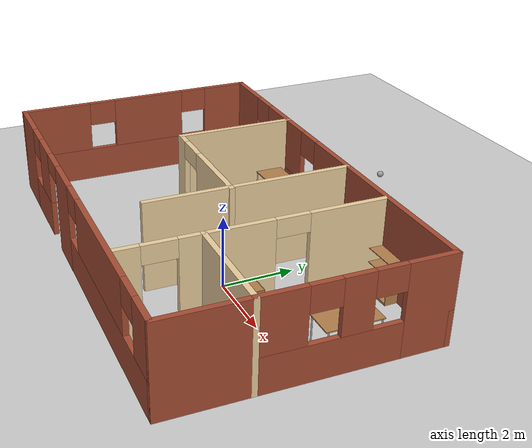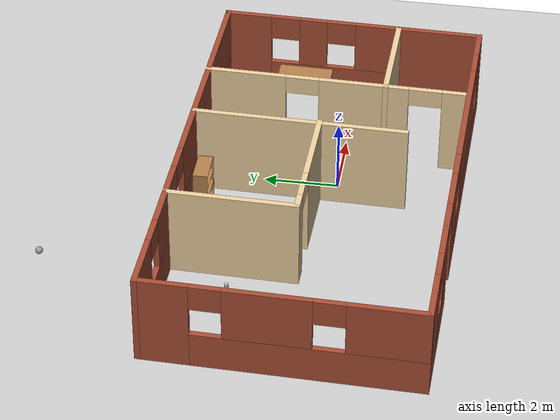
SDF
<sdf version="1.6">
 <world name="default">
  <plugin name="hello" filename="libhello.so"/>
  <light name="sun" type="directional">
   <pose>0 0 10 0 -0 0</pose>
   <diffuse>0.8 0.8 0.8 1</diffuse>
   <specular>0.2 0.2 0.2 1</specular>
   <attenuation>
    <range>1000</range>
    <constant>0.9</constant>
    <linear>0.01</linear>
    <quadratic>0.001</quadratic>
   </attenuation>
   <direction>-0.5 0.1 -0.9</direction>
   <spot><inner_angle>0</inner_angle><outer_angle>0</outer_angle><falloff>0</falloff></spot>
  </light>
  <model name="ground_plane">
   <static>1</static>
   <link name="link">
    <collision name="collision">
     <geometry><plane><normal>0 0 1</normal><size>100 100</size></plane></geometry>
     <surface>
      <contact><collide_bitmask>65535</collide_bitmask></contact>
      <friction><ode><mu>100</mu><mu2>50</mu2></ode></friction>
     </surface>
    </collision>
    <visual name="visual">
     <cast_shadows>0</cast_shadows>
     <geometry><plane><normal>0 0 1</normal><size>100 100</size></plane></geometry>
     <material>
      <script><uri>file://media/materials/scripts/gazebo.material</uri><name>Gazebo/Grey</name></script>
     </material>
    </visual>
   </link>
  </model>
  <gravity>0 0 -9.8</gravity>
  <magnetic_field>6e-06 2.3e-05 -4.2e-05</magnetic_field>
  <atmosphere type="adiabatic"/>
  <physics name="default_physics" default="0" type="ode">
   <max_step_size>0.001</max_step_size>
   <real_time_factor>1</real_time_factor>
   <real_time_update_rate>1000</real_time_update_rate>
  </physics>
  <scene><ambient>0.4 0.4 0.4 1</ambient><background>0.7 0.7 0.7 1</background><shadows>1</shadows></scene>
  <spherical_coordinates>
   <surface_model>EARTH_WGS84</surface_model>
   <latitude_deg>0</latitude_deg>
   <longitude_deg>0</longitude_deg>
   <elevation>0</elevation>
   <heading_deg>0</heading_deg>
  </spherical_coordinates>
  <model name="apartment">
   <pose>-1.69639 0.317076 0 0 0 -0.022734</pose>
   <link name="Wall_10">
    <pose>-5.925 -0.028256 0 0 -0 -1.5708</pose>
    <visual name="Wall_10_Visual_0">
     <pose>-2.93317 0 1.25 0 -0 0</pose>
     <geometry><box><size>1.38366 0.15 2.5</size></box></geometry>
     <material>
      <script><uri>file://media/materials/scripts/gazebo.material</uri><name>Gazebo/Bricks</name></script>
      <ambient>1 1 1 1</ambient>
     </material>
     <meta><layer>0</layer></meta>
    </visual>
    <collision name="Wall_10_Collision_0">
     <geometry><box><size>1.38366 0.15 2.5</size></box></geometry>
     <pose>-2.93317 0 1.25 0 -0 0</pose>
    </collision>
    <visual name="Wall_10_Visual_1">
     <pose>0.691828 0 0.5 0 -0 0</pose>
     <geometry><box><size>5.86634 0.15 1</size></box></geometry>
     <material>
      <script><uri>file://media/materials/scripts/gazebo.material</uri><name>Gazebo/Bricks</name></script>
      <ambient>1 1 1 1</ambient>
     </material>
     <meta><layer>0</layer></meta>
    </visual>
    <collision name="Wall_10_Collision_1">
     <geometry><box><size>5.86634 0.15 1</size></box></geometry>
     <pose>0.691828 0 0.5 0 -0 0</pose>
    </collision>
    <visual name="Wall_10_Visual_2">
     <pose>-0.338336 0 1.75 0 -0 0</pose>
     <geometry><box><size>2.20601 0.15 1.5</size></box></geometry>
     <material>
      <script><uri>file://media/materials/scripts/gazebo.material</uri><name>Gazebo/Bricks</name></script>
      <ambient>1 1 1 1</ambient>
     </material>
     <meta><layer>0</layer></meta>
    </visual>
    <collision name="Wall_10_Collision_2">
     <geometry><box><size>2.20601 0.15 1.5</size></box></geometry>
     <pose>-0.338336 0 1.75 0 -0 0</pose>
    </collision>
    <visual name="Wall_10_Visual_3">
     <pose>2.59484 0 1.75 0 -0 0</pose>
     <geometry><box><size>2.06033 0.15 1.5</size></box></geometry>
     <material>
      <script><uri>file://media/materials/scripts/gazebo.material</uri><name>Gazebo/Bricks</name></script>
      <ambient>1 1 1 1</ambient>
     </material>
     <meta><layer>0</layer></meta>
    </visual>
    <collision name="Wall_10_Collision_3">
     <geometry><box><size>2.06033 0.15 1.5</size></box></geometry>
     <pose>2.59484 0 1.75 0 -0 0</pose>
    </collision>
    <visual name="Wall_10_Visual_4">
     <pose>-1.84134 0 2.15 0 -0 0</pose>
     <geometry><box><size>0.8 0.15 0.7</size></box></geometry>
     <material>
      <script><uri>file://media/materials/scripts/gazebo.material</uri><name>Gazebo/Bricks</name></script>
      <ambient>1 1 1 1</ambient>
     </material>
     <meta><layer>0</layer></meta>
    </visual>
    <collision name="Wall_10_Collision_4">
     <geometry><box><size>0.8 0.15 0.7</size></box></geometry>
     <pose>-1.84134 0 2.15 0 -0 0</pose>
    </collision>
    <visual name="Wall_10_Visual_5">
     <pose>1.16467 0 2.15 0 -0 0</pose>
     <geometry><box><size>0.8 0.15 0.7</size></box></geometry>
     <material>
      <script><uri>file://media/materials/scripts/gazebo.material</uri><name>Gazebo/Bricks</name></script>
      <ambient>1 1 1 1</ambient>
     </material>
     <meta><layer>0</layer></meta>
    </visual>
    <collision name="Wall_10_Collision_5">
     <geometry><box><size>0.8 0.15 0.7</size></box></geometry>
     <pose>1.16467 0 2.15 0 -0 0</pose>
    </collision>
   </link>
   <link name="Wall_11">
    <pose>-0 -3.57826 0 0 -0 0</pose>
    <visual name="Wall_11_Visual_0">
     <pose>-5.2325 0 1.25 0 -0 0</pose>
     <geometry><box><size>1.535 0.15 2.5</size></box></geometry>
     <material>
      <script><uri>file://media/materials/scripts/gazebo.material</uri><name>Gazebo/Bricks</name></script>
      <ambient>1 1 1 1</ambient>
     </material>
     <meta><layer>0</layer></meta>
    </visual>
    <collision name="Wall_11_Collision_0">
     <geometry><box><size>1.535 0.15 2.5</size></box></geometry>
     <pose>-5.2325 0 1.25 0 -0 0</pose>
    </collision>
    <visual name="Wall_11_Visual_1">
     <pose>-1.07324 0 1.25 0 -0 0</pose>
     <geometry><box><size>1.26192 0.15 2.5</size></box></geometry>
     <material>
      <script><uri>file://media/materials/scripts/gazebo.material</uri><name>Gazebo/Bricks</name></script>
      <ambient>1 1 1 1</ambient>
     </material>
     <meta><layer>0</layer></meta>
    </visual>
    <collision name="Wall_11_Collision_1">
     <geometry><box><size>1.26192 0.15 2.5</size></box></geometry>
     <pose>-1.07324 0 1.25 0 -0 0</pose>
    </collision>
    <visual name="Wall_11_Visual_2">
     <pose>-3.5346 0 0.5 0 -0 0</pose>
     <geometry><box><size>1.86079 0.15 1</size></box></geometry>
     <material>
      <script><uri>file://media/materials/scripts/gazebo.material</uri><name>Gazebo/Bricks</name></script>
      <ambient>1 1 1 1</ambient>
     </material>
     <meta><layer>0</layer></meta>
    </visual>
    <collision name="Wall_11_Collision_2">
     <geometry><box><size>1.86079 0.15 1</size></box></geometry>
     <pose>-3.5346 0 0.5 0 -0 0</pose>
    </collision>
    <visual name="Wall_11_Visual_3">
     <pose>2.77886 0 0.5 0 -0 0</pose>
     <geometry><box><size>6.44228 0.15 1</size></box></geometry>
     <material>
      <script><uri>file://media/materials/scripts/gazebo.material</uri><name>Gazebo/Bricks</name></script>
      <ambient>1 1 1 1</ambient>
     </material>
     <meta><layer>0</layer></meta>
    </visual>
    <collision name="Wall_11_Collision_3">
     <geometry><box><size>6.44228 0.15 1</size></box></geometry>
     <pose>2.77886 0 0.5 0 -0 0</pose>
    </collision>
    <visual name="Wall_11_Visual_4">
     <pose>-3.1346 0 1.75 0 -0 0</pose>
     <geometry><box><size>1.06079 0.15 1.5</size></box></geometry>
     <material>
      <script><uri>file://media/materials/scripts/gazebo.material</uri><name>Gazebo/Bricks</name></script>
      <ambient>1 1 1 1</ambient>
     </material>
     <meta><layer>0</layer></meta>
    </visual>
    <collision name="Wall_11_Collision_4">
     <geometry><box><size>1.06079 0.15 1.5</size></box></geometry>
     <pose>-3.1346 0 1.75 0 -0 0</pose>
    </collision>
    <visual name="Wall_11_Visual_5">
     <pose>-3.1346 0 1.75 0 -0 0</pose>
     <geometry><box><size>1.06079 0.15 1.5</size></box></geometry>
     <material>
      <script><uri>file://media/materials/scripts/gazebo.material</uri><name>Gazebo/Bricks</name></script>
      <ambient>1 1 1 1</ambient>
     </material>
     <meta><layer>0</layer></meta>
    </visual>
    <collision name="Wall_11_Collision_5">
     <geometry><box><size>1.06079 0.15 1.5</size></box></geometry>
     <pose>-3.1346 0 1.75 0 -0 0</pose>
    </collision>
    <visual name="Wall_11_Visual_6">
     <pose>2.28084 0 1.75 0 -0 0</pose>
     <geometry><box><size>3.84624 0.15 1.5</size></box></geometry>
     <material>
      <script><uri>file://media/materials/scripts/gazebo.material</uri><name>Gazebo/Bricks</name></script>
      <ambient>1 1 1 1</ambient>
     </material>
     <meta><layer>0</layer></meta>
    </visual>
    <collision name="Wall_11_Collision_6">
     <geometry><box><size>3.84624 0.15 1.5</size></box></geometry>
     <pose>2.28084 0 1.75 0 -0 0</pose>
    </collision>
    <visual name="Wall_11_Visual_7">
     <pose>5.50198 0 1.75 0 -0 0</pose>
     <geometry><box><size>0.996046 0.15 1.5</size></box></geometry>
     <material>
      <script><uri>file://media/materials/scripts/gazebo.material</uri><name>Gazebo/Bricks</name></script>
      <ambient>1 1 1 1</ambient>
     </material>
     <meta><layer>0</layer></meta>
    </visual>
    <collision name="Wall_11_Collision_7">
     <geometry><box><size>0.996046 0.15 1.5</size></box></geometry>
     <pose>5.50198 0 1.75 0 -0 0</pose>
    </collision>
    <visual name="Wall_11_Visual_8">
     <pose>-4.065 0 2.15 0 -0 0</pose>
     <geometry><box><size>0.8 0.15 0.7</size></box></geometry>
     <material>
      <script><uri>file://media/materials/scripts/gazebo.material</uri><name>Gazebo/Bricks</name></script>
      <ambient>1 1 1 1</ambient>
     </material>
     <meta><layer>0</layer></meta>
    </visual>
    <collision name="Wall_11_Collision_8">
     <geometry><box><size>0.8 0.15 0.7</size></box></geometry>
     <pose>-4.065 0 2.15 0 -0 0</pose>
    </collision>
    <visual name="Wall_11_Visual_9">
     <pose>-0.042282 0 2.15 0 -0 0</pose>
     <geometry><box><size>0.8 0.15 0.7</size></box></geometry>
     <material>
      <script><uri>file://media/materials/scripts/gazebo.material</uri><name>Gazebo/Bricks</name></script>
      <ambient>1 1 1 1</ambient>
     </material>
     <meta><layer>0</layer></meta>
    </visual>
    <collision name="Wall_11_Collision_9">
     <geometry><box><size>0.8 0.15 0.7</size></box></geometry>
     <pose>-0.042282 0 2.15 0 -0 0</pose>
    </collision>
    <visual name="Wall_11_Visual_10">
     <pose>4.60395 0 2.15 0 -0 0</pose>
     <geometry><box><size>0.8 0.15 0.7</size></box></geometry>
     <material>
      <script><uri>file://media/materials/scripts/gazebo.material</uri><name>Gazebo/Bricks</name></script>
      <ambient>1 1 1 1</ambient>
     </material>
     <meta><layer>0</layer></meta>
    </visual>
    <collision name="Wall_11_Collision_10">
     <geometry><box><size>0.8 0.15 0.7</size></box></geometry>
     <pose>4.60395 0 2.15 0 -0 0</pose>
    </collision>
    <visual name="Wall_11_Visual_11">
     <pose>-2.15421 0 2.25 0 -0 0</pose>
     <geometry><box><size>0.9 0.15 0.5</size></box></geometry>
     <material>
      <script><uri>file://media/materials/scripts/gazebo.material</uri><name>Gazebo/Bricks</name></script>
      <ambient>1 1 1 1</ambient>
     </material>
     <meta><layer>0</layer></meta>
    </visual>
    <collision name="Wall_11_Collision_11">
     <geometry><box><size>0.9 0.15 0.5</size></box></geometry>
     <pose>-2.15421 0 2.25 0 -0 0</pose>
    </collision>
    <visual name="Wall_11_Visual_12">
     <pose>-2.15421 0 2.25 0 -0 0</pose>
     <geometry><box><size>0.9 0.15 0.5</size></box></geometry>
     <material>
      <script><uri>file://media/materials/scripts/gazebo.material</uri><name>Gazebo/Bricks</name></script>
      <ambient>1 1 1 1</ambient>
     </material>
     <meta><layer>0</layer></meta>
    </visual>
    <collision name="Wall_11_Collision_12">
     <geometry><box><size>0.9 0.15 0.5</size></box></geometry>
     <pose>-2.15421 0 2.25 0 -0 0</pose>
    </collision>
   </link>
   <link name="Wall_12">
    <collision name="Wall_12_Collision">
     <geometry><box><size>2.4 0.15 2.5</size></box></geometry>
     <pose>0 0 1.25 0 -0 0</pose>
    </collision>
    <visual name="Wall_12_Visual">
     <pose>0 0 1.25 0 -0 0</pose>
     <geometry><box><size>2.4 0.15 2.5</size></box></geometry>
     <material>
      <script><uri>file://media/materials/scripts/gazebo.material</uri><name>Gazebo/Bricks</name></script>
      <ambient>1 1 1 1</ambient>
     </material>
     <meta><layer>0</layer></meta>
    </visual>
    <pose>5.925 -2.45326 0 0 -0 1.5708</pose>
   </link>
   <link name="Wall_14">
    <collision name="Wall_14_Collision">
     <geometry><box><size>5.75 0.15 2.5</size></box></geometry>
     <pose>0 0 1.25 0 -0 0</pose>
    </collision>
    <visual name="Wall_14_Visual">
     <pose>0 0 1.25 0 -0 0</pose>
     <geometry><box><size>5.75 0.15 2.5</size></box></geometry>
     <material>
      <script><uri>file://media/materials/scripts/gazebo.material</uri><name>Gazebo/Grey</name></script>
      <ambient>0.921569 0.807843 0.615686 1</ambient>
     </material>
     <meta><layer>0</layer></meta>
    </visual>
    <pose>1.10155 0.680987 0 0 -0 -1.5708</pose>
   </link>
   <link name="Wall_21">
    <collision name="Wall_21_Collision">
     <geometry><box><size>3.5 0.15 2.5</size></box></geometry>
     <pose>0 0 1.25 0 -0 0</pose>
    </collision>
    <visual name="Wall_21_Visual">
     <pose>0 0 1.25 0 -0 0</pose>
     <geometry><box><size>3.5 0.15 2.5</size></box></geometry>
     <material>
      <script><uri>file://media/materials/scripts/gazebo.material</uri><name>Gazebo/Grey</name></script>
      <ambient>0.921569 0.807843 0.615686 1</ambient>
     </material>
     <meta><layer>0</layer></meta>
    </visual>
    <pose>-2.44698 1.84407 0 0 -0 -1.5708</pose>
   </link>
   <link name="Wall_22">
    <pose>-0.646975 0.169069 0 0 -0 0</pose>
    <visual name="Wall_22_Visual_0">
     <pose>-1.61441 0 1.25 0 -0 0</pose>
     <geometry><box><size>0.521175 0.15 2.5</size></box></geometry>
     <material>
      <script><uri>file://media/materials/scripts/gazebo.material</uri><name>Gazebo/Grey</name></script>
      <ambient>0.921569 0.807843 0.615686 1</ambient>
     </material>
     <meta><layer>0</layer></meta>
    </visual>
    <collision name="Wall_22_Collision_0">
     <geometry><box><size>0.521175 0.15 2.5</size></box></geometry>
     <pose>-1.61441 0 1.25 0 -0 0</pose>
    </collision>
    <visual name="Wall_22_Visual_1">
     <pose>0.710588 0 1.25 0 -0 0</pose>
     <geometry><box><size>2.32883 0.15 2.5</size></box></geometry>
     <material>
      <script><uri>file://media/materials/scripts/gazebo.material</uri><name>Gazebo/Grey</name></script>
      <ambient>0.921569 0.807843 0.615686 1</ambient>
     </material>
     <meta><layer>0</layer></meta>
    </visual>
    <collision name="Wall_22_Collision_1">
     <geometry><box><size>2.32883 0.15 2.5</size></box></geometry>
     <pose>0.710588 0 1.25 0 -0 0</pose>
    </collision>
    <visual name="Wall_22_Visual_2">
     <pose>-0.903825 0 2.25 0 -0 0</pose>
     <geometry><box><size>0.9 0.15 0.5</size></box></geometry>
     <material>
      <script><uri>file://media/materials/scripts/gazebo.material</uri><name>Gazebo/Grey</name></script>
      <ambient>0.921569 0.807843 0.615686 1</ambient>
     </material>
     <meta><layer>0</layer></meta>
    </visual>
    <collision name="Wall_22_Collision_2">
     <geometry><box><size>0.9 0.15 0.5</size></box></geometry>
     <pose>-0.903825 0 2.25 0 -0 0</pose>
    </collision>
   </link>
   <link name="Wall_24">
    <pose>3.075 -2.37826 0 0 -0 -1.5708</pose>
    <visual name="Wall_24_Visual_0">
     <pose>-0.771247 0 1.25 0 -0 0</pose>
     <geometry><box><size>0.707506 0.15 2.5</size></box></geometry>
     <material>
      <script><uri>file://media/materials/scripts/gazebo.material</uri><name>Gazebo/Grey</name></script>
      <ambient>0.921569 0.807843 0.615686 1</ambient>
     </material>
     <meta><layer>0</layer></meta>
    </visual>
    <collision name="Wall_24_Collision_0">
     <geometry><box><size>0.707506 0.15 2.5</size></box></geometry>
     <pose>-0.771247 0 1.25 0 -0 0</pose>
    </collision>
    <visual name="Wall_24_Visual_1">
     <pose>0.803753 0 1.25 0 -0 0</pose>
     <geometry><box><size>0.642494 0.15 2.5</size></box></geometry>
     <material>
      <script><uri>file://media/materials/scripts/gazebo.material</uri><name>Gazebo/Grey</name></script>
      <ambient>0.921569 0.807843 0.615686 1</ambient>
     </material>
     <meta><layer>0</layer></meta>
    </visual>
    <collision name="Wall_24_Collision_1">
     <geometry><box><size>0.642494 0.15 2.5</size></box></geometry>
     <pose>0.803753 0 1.25 0 -0 0</pose>
    </collision>
    <visual name="Wall_24_Visual_2">
     <pose>0.032506 0 2.25 0 -0 0</pose>
     <geometry><box><size>0.9 0.15 0.5</size></box></geometry>
     <material>
      <script><uri>file://media/materials/scripts/gazebo.material</uri><name>Gazebo/Grey</name></script>
      <ambient>0.921569 0.807843 0.615686 1</ambient>
     </material>
     <meta><layer>0</layer></meta>
    </visual>
    <collision name="Wall_24_Collision_2">
     <geometry><box><size>0.9 0.15 0.5</size></box></geometry>
     <pose>0.032506 0 2.25 0 -0 0</pose>
    </collision>
   </link>
   <link name="Wall_5">
    <pose>-0 3.52174 0 0 -0 0</pose>
    <visual name="Wall_5_Visual_0">
     <pose>-5.21398 0 1.25 0 -0 0</pose>
     <geometry><box><size>1.57204 0.15 2.5</size></box></geometry>
     <material>
      <script><uri>file://media/materials/scripts/gazebo.material</uri><name>Gazebo/Bricks</name></script>
      <ambient>1 1 1 1</ambient>
     </material>
     <meta><layer>0</layer></meta>
    </visual>
    <collision name="Wall_5_Collision_0">
     <geometry><box><size>1.57204 0.15 2.5</size></box></geometry>
     <pose>-5.21398 0 1.25 0 -0 0</pose>
    </collision>
    <visual name="Wall_5_Visual_1">
     <pose>0.78602 0 0.5 0 -0 0</pose>
     <geometry><box><size>10.428 0.15 1</size></box></geometry>
     <material>
      <script><uri>file://media/materials/scripts/gazebo.material</uri><name>Gazebo/Bricks</name></script>
      <ambient>1 1 1 1</ambient>
     </material>
     <meta><layer>0</layer></meta>
    </visual>
    <collision name="Wall_5_Collision_1">
     <geometry><box><size>10.428 0.15 1</size></box></geometry>
     <pose>0.78602 0 0.5 0 -0 0</pose>
    </collision>
    <visual name="Wall_5_Visual_2">
     <pose>-2.5279 0 1.75 0 -0 0</pose>
     <geometry><box><size>2.20011 0.15 1.5</size></box></geometry>
     <material>
      <script><uri>file://media/materials/scripts/gazebo.material</uri><name>Gazebo/Bricks</name></script>
      <ambient>1 1 1 1</ambient>
     </material>
     <meta><layer>0</layer></meta>
    </visual>
    <collision name="Wall_5_Collision_2">
     <geometry><box><size>2.20011 0.15 1.5</size></box></geometry>
     <pose>-2.5279 0 1.75 0 -0 0</pose>
    </collision>
    <visual name="Wall_5_Visual_3">
     <pose>2.68608 0 1.75 0 -0 0</pose>
     <geometry><box><size>6.62785 0.15 1.5</size></box></geometry>
     <material>
      <script><uri>file://media/materials/scripts/gazebo.material</uri><name>Gazebo/Bricks</name></script>
      <ambient>1 1 1 1</ambient>
     </material>
     <meta><layer>0</layer></meta>
    </visual>
    <collision name="Wall_5_Collision_3">
     <geometry><box><size>6.62785 0.15 1.5</size></box></geometry>
     <pose>2.68608 0 1.75 0 -0 0</pose>
    </collision>
    <visual name="Wall_5_Visual_4">
     <pose>-4.02796 0 2.15 0 -0 0</pose>
     <geometry><box><size>0.8 0.15 0.7</size></box></geometry>
     <material>
      <script><uri>file://media/materials/scripts/gazebo.material</uri><name>Gazebo/Bricks</name></script>
      <ambient>1 1 1 1</ambient>
     </material>
     <meta><layer>0</layer></meta>
    </visual>
    <collision name="Wall_5_Collision_4">
     <geometry><box><size>0.8 0.15 0.7</size></box></geometry>
     <pose>-4.02796 0 2.15 0 -0 0</pose>
    </collision>
    <visual name="Wall_5_Visual_5">
     <pose>-1.02785 0 2.15 0 -0 0</pose>
     <geometry><box><size>0.8 0.15 0.7</size></box></geometry>
     <material>
      <script><uri>file://media/materials/scripts/gazebo.material</uri><name>Gazebo/Bricks</name></script>
      <ambient>1 1 1 1</ambient>
     </material>
     <meta><layer>0</layer></meta>
    </visual>
    <collision name="Wall_5_Collision_5">
     <geometry><box><size>0.8 0.15 0.7</size></box></geometry>
     <pose>-1.02785 0 2.15 0 -0 0</pose>
    </collision>
   </link>
   <link name="Wall_6">
    <pose>5.925 1.09674 0 0 -0 -1.5708</pose>
    <visual name="Wall_6_Visual_0">
     <pose>-1.83834 0 1.25 0 -0 0</pose>
     <geometry><box><size>1.32332 0.15 2.5</size></box></geometry>
     <material>
      <script><uri>file://media/materials/scripts/gazebo.material</uri><name>Gazebo/Bricks</name></script>
      <ambient>1 1 1 1</ambient>
     </material>
     <meta><layer>0</layer></meta>
    </visual>
    <collision name="Wall_6_Collision_0">
     <geometry><box><size>1.32332 0.15 2.5</size></box></geometry>
     <pose>-1.83834 0 1.25 0 -0 0</pose>
    </collision>
    <visual name="Wall_6_Visual_1">
     <pose>0.661658 0 0.5 0 -0 0</pose>
     <geometry><box><size>3.67668 0.15 1</size></box></geometry>
     <material>
      <script><uri>file://media/materials/scripts/gazebo.material</uri><name>Gazebo/Bricks</name></script>
      <ambient>1 1 1 1</ambient>
     </material>
     <meta><layer>0</layer></meta>
    </visual>
    <collision name="Wall_6_Collision_1">
     <geometry><box><size>3.67668 0.15 1</size></box></geometry>
     <pose>0.661658 0 0.5 0 -0 0</pose>
    </collision>
    <visual name="Wall_6_Visual_2">
     <pose>0.017802 0 1.75 0 -0 0</pose>
     <geometry><box><size>0.788972 0.15 1.5</size></box></geometry>
     <material>
      <script><uri>file://media/materials/scripts/gazebo.material</uri><name>Gazebo/Bricks</name></script>
      <ambient>1 1 1 1</ambient>
     </material>
     <meta><layer>0</layer></meta>
    </visual>
    <collision name="Wall_6_Collision_2">
     <geometry><box><size>0.788972 0.15 1.5</size></box></geometry>
     <pose>0.017802 0 1.75 0 -0 0</pose>
    </collision>
    <visual name="Wall_6_Visual_3">
     <pose>1.85614 0 1.75 0 -0 0</pose>
     <geometry><box><size>1.28771 0.15 1.5</size></box></geometry>
     <material>
      <script><uri>file://media/materials/scripts/gazebo.material</uri><name>Gazebo/Bricks</name></script>
      <ambient>1 1 1 1</ambient>
     </material>
     <meta><layer>0</layer></meta>
    </visual>
    <collision name="Wall_6_Collision_3">
     <geometry><box><size>1.28771 0.15 1.5</size></box></geometry>
     <pose>1.85614 0 1.75 0 -0 0</pose>
    </collision>
    <visual name="Wall_6_Visual_4">
     <pose>-0.776684 0 2.15 0 -0 0</pose>
     <geometry><box><size>0.8 0.15 0.7</size></box></geometry>
     <material>
      <script><uri>file://media/materials/scripts/gazebo.material</uri><name>Gazebo/Bricks</name></script>
      <ambient>1 1 1 1</ambient>
     </material>
     <meta><layer>0</layer></meta>
    </visual>
    <collision name="Wall_6_Collision_4">
     <geometry><box><size>0.8 0.15 0.7</size></box></geometry>
     <pose>-0.776684 0 2.15 0 -0 0</pose>
    </collision>
    <visual name="Wall_6_Visual_5">
     <pose>0.812288 0 2.15 0 -0 0</pose>
     <geometry><box><size>0.8 0.15 0.7</size></box></geometry>
     <material>
      <script><uri>file://media/materials/scripts/gazebo.material</uri><name>Gazebo/Bricks</name></script>
      <ambient>1 1 1 1</ambient>
     </material>
     <meta><layer>0</layer></meta>
    </visual>
    <collision name="Wall_6_Collision_5">
     <geometry><box><size>0.8 0.15 0.7</size></box></geometry>
     <pose>0.812288 0 2.15 0 -0 0</pose>
    </collision>
   </link>
   <link name="Wall_7">
    <collision name="Wall_7_Collision">
     <geometry><box><size>3 0.15 2.5</size></box></geometry>
     <pose>0 0 1.25 0 -0 0</pose>
    </collision>
    <visual name="Wall_7_Visual">
     <pose>0 0 1.25 0 -0 0</pose>
     <geometry><box><size>3 0.15 2.5</size></box></geometry>
     <material>
      <script><uri>file://media/materials/scripts/gazebo.material</uri><name>Gazebo/Grey</name></script>
      <ambient>0.921569 0.807843 0.615686 1</ambient>
     </material>
     <meta><layer>0</layer></meta>
    </visual>
    <pose>4.5 -1.32826 0 0 -0 3.14159</pose>
   </link>
   <link name="Wall_8">
    <pose>3.075 1.09674 0 0 -0 1.5708</pose>
    <visual name="Wall_8_Visual_0">
     <pose>-1.55933 0 1.25 0 -0 0</pose>
     <geometry><box><size>1.88135 0.15 2.5</size></box></geometry>
     <material>
      <script><uri>file://media/materials/scripts/gazebo.material</uri><name>Gazebo/Grey</name></script>
      <ambient>0.921569 0.807843 0.615686 1</ambient>
     </material>
     <meta><layer>0</layer></meta>
    </visual>
    <collision name="Wall_8_Collision_0">
     <geometry><box><size>1.88135 0.15 2.5</size></box></geometry>
     <pose>-1.55933 0 1.25 0 -0 0</pose>
    </collision>
    <visual name="Wall_8_Visual_1">
     <pose>1.39067 0 1.25 0 -0 0</pose>
     <geometry><box><size>2.21865 0.15 2.5</size></box></geometry>
     <material>
      <script><uri>file://media/materials/scripts/gazebo.material</uri><name>Gazebo/Grey</name></script>
      <ambient>0.921569 0.807843 0.615686 1</ambient>
     </material>
     <meta><layer>0</layer></meta>
    </visual>
    <collision name="Wall_8_Collision_1">
     <geometry><box><size>2.21865 0.15 2.5</size></box></geometry>
     <pose>1.39067 0 1.25 0 -0 0</pose>
    </collision>
    <visual name="Wall_8_Visual_2">
     <pose>-0.168653 0 2.25 0 -0 0</pose>
     <geometry><box><size>0.9 0.15 0.5</size></box></geometry>
     <material>
      <script><uri>file://media/materials/scripts/gazebo.material</uri><name>Gazebo/Grey</name></script>
      <ambient>0.921569 0.807843 0.615686 1</ambient>
     </material>
     <meta><layer>0</layer></meta>
    </visual>
    <collision name="Wall_8_Collision_2">
     <geometry><box><size>0.9 0.15 0.5</size></box></geometry>
     <pose>-0.168653 0 2.25 0 -0 0</pose>
    </collision>
   </link>
   <static>1</static>
  </model>
  <model name="bookshelf">
   <static>1</static>
   <link name="link">
    <inertial><mass>1</mass></inertial>
    <collision name="back">
     <pose>0 0.005 0.6 0 -0 0</pose>
     <geometry><box><size>0.9 0.01 1.2</size></box></geometry>
    </collision>
    <visual name="visual1">
     <pose>0 0.005 0.6 0 -0 0</pose>
     <geometry><box><size>0.9 0.01 1.2</size></box></geometry>
     <material>
      <script><uri>file://media/materials/scripts/gazebo.material</uri><name>Gazebo/Wood</name></script>
     </material>
    </visual>
    <collision name="left_side">
     <pose>0.45 -0.195 0.6 0 -0 0</pose>
     <geometry><box><size>0.02 0.4 1.2</size></box></geometry>
    </collision>
    <visual name="visual2">
     <pose>0.45 -0.195 0.6 0 -0 0</pose>
     <geometry><box><size>0.02 0.4 1.2</size></box></geometry>
     <material>
      <script><uri>file://media/materials/scripts/gazebo.material</uri><name>Gazebo/Wood</name></script>
     </material>
    </visual>
    <collision name="right_side">
     <pose>-0.45 -0.195 0.6 0 -0 0</pose>
     <geometry><box><size>0.02 0.4 1.2</size></box></geometry>
    </collision>
    <visual name="visual3">
     <pose>-0.45 -0.195 0.6 0 -0 0</pose>
     <geometry><box><size>0.02 0.4 1.2</size></box></geometry>
     <material>
      <script><uri>file://media/materials/scripts/gazebo.material</uri><name>Gazebo/Wood</name></script>
     </material>
    </visual>
    <collision name="bottom">
     <pose>0 -0.195 0.03 0 -0 0</pose>
     <geometry><box><size>0.88 0.4 0.06</size></box></geometry>
    </collision>
    <visual name="visual4">
     <pose>0 -0.195 0.03 0 -0 0</pose>
     <geometry><box><size>0.88 0.4 0.06</size></box></geometry>
     <material>
      <script><uri>file://media/materials/scripts/gazebo.material</uri><name>Gazebo/Wood</name></script>
     </material>
    </visual>
    <collision name="top">
     <pose>0 -0.195 1.19 0 -0 0</pose>
     <geometry><box><size>0.88 0.4 0.02</size></box></geometry>
    </collision>
    <visual name="visual5">
     <pose>0 -0.195 1.19 0 -0 0</pose>
     <geometry><box><size>0.88 0.4 0.02</size></box></geometry>
     <material>
      <script><uri>file://media/materials/scripts/gazebo.material</uri><name>Gazebo/Wood</name></script>
     </material>
    </visual>
    <collision name="low_shelf">
     <pose>0 -0.195 0.43 0 -0 0</pose>
     <geometry><box><size>0.88 0.4 0.02</size></box></geometry>
    </collision>
    <visual name="visual6">
     <pose>0 -0.195 0.43 0 -0 0</pose>
     <geometry><box><size>0.88 0.4 0.02</size></box></geometry>
     <material>
      <script><uri>file://media/materials/scripts/gazebo.material</uri><name>Gazebo/Wood</name></script>
     </material>
    </visual>
    <collision name="high_shelf">
     <pose>0 -0.195 0.8 0 -0 0</pose>
     <geometry><box><size>0.88 0.4 0.02</size></box></geometry>
    </collision>
    <visual name="visual7">
     <pose>0 -0.195 0.8 0 -0 0</pose>
     <geometry><box><size>0.88 0.4 0.02</size></box></geometry>
     <material>
      <script><uri>file://media/materials/scripts/gazebo.material</uri><name>Gazebo/Wood</name></script>
     </material>
    </visual>
   </link>
   <pose>-1.23153 3.65908 0 0 -0 0</pose>
  </model>
  <model name="bookshelf_0">
   <static>1</static>
   <link name="link">
    <inertial><mass>1</mass></inertial>
    <collision name="back">
     <pose>0 0.005 0.6 0 -0 0</pose>
     <geometry><box><size>0.9 0.01 1.2</size></box></geometry>
    </collision>
    <visual name="visual1">
     <pose>0 0.005 0.6 0 -0 0</pose>
     <geometry><box><size>0.9 0.01 1.2</size></box></geometry>
     <material>
      <script><uri>file://media/materials/scripts/gazebo.material</uri><name>Gazebo/Wood</name></script>
     </material>
    </visual>
    <collision name="left_side">
     <pose>0.45 -0.195 0.6 0 -0 0</pose>
     <geometry><box><size>0.02 0.4 1.2</size></box></geometry>
    </collision>
    <visual name="visual2">
     <pose>0.45 -0.195 0.6 0 -0 0</pose>
     <geometry><box><size>0.02 0.4 1.2</size></box></geometry>
     <material>
      <script><uri>file://media/materials/scripts/gazebo.material</uri><name>Gazebo/Wood</name></script>
     </material>
    </visual>
    <collision name="right_side">
     <pose>-0.45 -0.195 0.6 0 -0 0</pose>
     <geometry><box><size>0.02 0.4 1.2</size></box></geometry>
    </collision>
    <visual name="visual3">
     <pose>-0.45 -0.195 0.6 0 -0 0</pose>
     <geometry><box><size>0.02 0.4 1.2</size></box></geometry>
     <material>
      <script><uri>file://media/materials/scripts/gazebo.material</uri><name>Gazebo/Wood</name></script>
     </material>
    </visual>
    <collision name="bottom">
     <pose>0 -0.195 0.03 0 -0 0</pose>
     <geometry><box><size>0.88 0.4 0.06</size></box></geometry>
    </collision>
    <visual name="visual4">
     <pose>0 -0.195 0.03 0 -0 0</pose>
     <geometry><box><size>0.88 0.4 0.06</size></box></geometry>
     <material>
      <script><uri>file://media/materials/scripts/gazebo.material</uri><name>Gazebo/Wood</name></script>
     </material>
    </visual>
    <collision name="top">
     <pose>0 -0.195 1.19 0 -0 0</pose>
     <geometry><box><size>0.88 0.4 0.02</size></box></geometry>
    </collision>
    <visual name="visual5">
     <pose>0 -0.195 1.19 0 -0 0</pose>
     <geometry><box><size>0.88 0.4 0.02</size></box></geometry>
     <material>
      <script><uri>file://media/materials/scripts/gazebo.material</uri><name>Gazebo/Wood</name></script>
     </material>
    </visual>
    <collision name="low_shelf">
     <pose>0 -0.195 0.43 0 -0 0</pose>
     <geometry><box><size>0.88 0.4 0.02</size></box></geometry>
    </collision>
    <visual name="visual6">
     <pose>0 -0.195 0.43 0 -0 0</pose>
     <geometry><box><size>0.88 0.4 0.02</size></box></geometry>
     <material>
      <script><uri>file://media/materials/scripts/gazebo.material</uri><name>Gazebo/Wood</name></script>
     </material>
    </visual>
    <collision name="high_shelf">
     <pose>0 -0.195 0.8 0 -0 0</pose>
     <geometry><box><size>0.88 0.4 0.02</size></box></geometry>
    </collision>
    <visual name="visual7">
     <pose>0 -0.195 0.8 0 -0 0</pose>
     <geometry><box><size>0.88 0.4 0.02</size></box></geometry>
     <material>
      <script><uri>file://media/materials/scripts/gazebo.material</uri><name>Gazebo/Wood</name></script>
     </material>
    </visual>
   </link>
   <pose>1.93792 3.70961 0 0 -0 0</pose>
  </model>
  <model name="beer">
   <link name="link">
    <pose>0 0 0.115 0 -0 0</pose>
    <inertial>
     <mass>0.39</mass>
     <inertia><ixx>0.00058</ixx><ixy>0</ixy><ixz>0</ixz><iyy>0.00058</iyy><iyz>0</iyz><izz>0.00019</izz></inertia>
    </inertial>
    <collision name="collision">
     <geometry><cylinder><radius>0.055</radius><length>0.23</length></cylinder></geometry>
    </collision>
    <visual name="visual">
     <geometry><cylinder><radius>0.055</radius><length>0.23</length></cylinder></geometry>
     <material>
      <script>
       <uri>model://beer/materials/scripts</uri>
       <uri>model://beer/materials/textures</uri>
       <name>Beer/Diffuse</name>
      </script>
     </material>
    </visual>
   </link>
   <pose>-5.65703 2.08617 0.775002 1.1e-05 3.9e-05 0.004052</pose>
  </model>
  <model name="table">
   <static>1</static>
   <link name="link">
    <collision name="surface">
     <pose>0 0 1 0 -0 0</pose>
     <geometry><box><size>1.5 0.8 0.03</size></box></geometry>
     <surface><friction><ode><mu>0.6</mu><mu2>0.6</mu2></ode></friction></surface>
    </collision>
    <visual name="visual1">
     <pose>0 0 1 0 -0 0</pose>
     <geometry><box><size>1.5 0.8 0.03</size></box></geometry>
     <material>
      <script><uri>file://media/materials/scripts/gazebo.material</uri><name>Gazebo/Wood</name></script>
     </material>
    </visual>
    <collision name="front_left_leg">
     <pose>0.68 0.38 0.5 0 -0 0</pose>
     <geometry><cylinder><radius>0.02</radius><length>1</length></cylinder></geometry>
    </collision>
    <visual name="front_left_leg">
     <pose>0.68 0.38 0.5 0 -0 0</pose>
     <geometry><cylinder><radius>0.02</radius><length>1</length></cylinder></geometry>
     <material>
      <script><uri>file://media/materials/scripts/gazebo.material</uri><name>Gazebo/Grey</name></script>
     </material>
    </visual>
    <collision name="front_right_leg">
     <pose>0.68 -0.38 0.5 0 -0 0</pose>
     <geometry><cylinder><radius>0.02</radius><length>1</length></cylinder></geometry>
    </collision>
    <visual name="front_right_leg">
     <pose>0.68 -0.38 0.5 0 -0 0</pose>
     <geometry><cylinder><radius>0.02</radius><length>1</length></cylinder></geometry>
     <material>
      <script><uri>file://media/materials/scripts/gazebo.material</uri><name>Gazebo/Grey</name></script>
     </material>
    </visual>
    <collision name="back_right_leg">
     <pose>-0.68 -0.38 0.5 0 -0 0</pose>
     <geometry><cylinder><radius>0.02</radius><length>1</length></cylinder></geometry>
    </collision>
    <visual name="back_right_leg">
     <pose>-0.68 -0.38 0.5 0 -0 0</pose>
     <geometry><cylinder><radius>0.02</radius><length>1</length></cylinder></geometry>
     <material>
      <script><uri>file://media/materials/scripts/gazebo.material</uri><name>Gazebo/Grey</name></script>
     </material>
    </visual>
    <collision name="back_left_leg">
     <pose>-0.68 0.38 0.5 0 -0 0</pose>
     <geometry><cylinder><radius>0.02</radius><length>1</length></cylinder></geometry>
    </collision>
    <visual name="back_left_leg">
     <pose>-0.68 0.38 0.5 0 -0 0</pose>
     <geometry><cylinder><radius>0.02</radius><length>1</length></cylinder></geometry>
     <material>
      <script><uri>file://media/materials/scripts/gazebo.material</uri><name>Gazebo/Grey</name></script>
     </material>
    </visual>
   </link>
   <pose>3.65777 1.42031 0.001054 -0.004408 -9.2e-05 -1.59161</pose>
  </model>
  <model name="table_0">
   <static>1</static>
   <link name="link">
    <collision name="surface">
     <pose>0 0 1 0 -0 0</pose>
     <geometry><box><size>1.5 0.8 0.03</size></box></geometry>
     <surface><friction><ode><mu>0.6</mu><mu2>0.6</mu2></ode></friction></surface>
    </collision>
    <visual name="visual1">
     <pose>0 0 1 0 -0 0</pose>
     <geometry><box><size>1.5 0.8 0.03</size></box></geometry>
     <material>
      <script><uri>file://media/materials/scripts/gazebo.material</uri><name>Gazebo/Wood</name></script>
     </material>
    </visual>
    <collision name="front_left_leg">
     <pose>0.68 0.38 0.5 0 -0 0</pose>
     <geometry><cylinder><radius>0.02</radius><length>1</length></cylinder></geometry>
    </collision>
    <visual name="front_left_leg">
     <pose>0.68 0.38 0.5 0 -0 0</pose>
     <geometry><cylinder><radius>0.02</radius><length>1</length></cylinder></geometry>
     <material>
      <script><uri>file://media/materials/scripts/gazebo.material</uri><name>Gazebo/Grey</name></script>
     </material>
    </visual>
    <collision name="front_right_leg">
     <pose>0.68 -0.38 0.5 0 -0 0</pose>
     <geometry><cylinder><radius>0.02</radius><length>1</length></cylinder></geometry>
    </collision>
    <visual name="front_right_leg">
     <pose>0.68 -0.38 0.5 0 -0 0</pose>
     <geometry><cylinder><radius>0.02</radius><length>1</length></cylinder></geometry>
     <material>
      <script><uri>file://media/materials/scripts/gazebo.material</uri><name>Gazebo/Grey</name></script>
     </material>
    </visual>
    <collision name="back_right_leg">
     <pose>-0.68 -0.38 0.5 0 -0 0</pose>
     <geometry><cylinder><radius>0.02</radius><length>1</length></cylinder></geometry>
    </collision>
    <visual name="back_right_leg">
     <pose>-0.68 -0.38 0.5 0 -0 0</pose>
     <geometry><cylinder><radius>0.02</radius><length>1</length></cylinder></geometry>
     <material>
      <script><uri>file://media/materials/scripts/gazebo.material</uri><name>Gazebo/Grey</name></script>
     </material>
    </visual>
    <collision name="back_left_leg">
     <pose>-0.68 0.38 0.5 0 -0 0</pose>
     <geometry><cylinder><radius>0.02</radius><length>1</length></cylinder></geometry>
    </collision>
    <visual name="back_left_leg">
     <pose>-0.68 0.38 0.5 0 -0 0</pose>
     <geometry><cylinder><radius>0.02</radius><length>1</length></cylinder></geometry>
     <material>
      <script><uri>file://media/materials/scripts/gazebo.material</uri><name>Gazebo/Grey</name></script>
     </material>
    </visual>
   </link>
   <pose>-3.28018 3.26918 0 0 -0 0</pose>
  </model>
  <model name="white_ball">
   <link name="link">
    <inertial>
     <mass>1</mass>
     <inertia><ixx>0.1</ixx><ixy>0</ixy><ixz>0</ixz><iyy>0.1</iyy><iyz>0</iyz><izz>0.1</izz></inertia>
    </inertial>
    <visual name="visual">
     <geometry><sphere><radius>0.1</radius></sphere></geometry>
     <material>
      <script><name>Gazebo/Grey</name><uri>file://media/materials/scripts/gazebo.material</uri></script>
      <shader type="pixel"><normal_map>__default__</normal_map></shader>
      <ambient>1 1 1 1</ambient>
      <diffuse>1 1 1 1</diffuse>
      <specular>1 1 1 1</specular>
      <emissive>1 1 1 1</emissive>
     </material>
    </visual>
    <collision name="collision">
     <geometry><sphere><radius>0.1</radius></sphere></geometry>
     <surface>
      <friction>
       <ode><mu>1</mu><mu2>1</mu2><fdir1>0 0 0</fdir1><slip1>0</slip1><slip2>0</slip2></ode>
       <torsional>
        <coefficient>1</coefficient>
        <patch_radius>0</patch_radius>
        <surface_radius>0</surface_radius>
        <use_patch_radius>1</use_patch_radius>
        <ode><slip>0</slip></ode>
       </torsional>
      </friction>
      <bounce><restitution_coefficient>0</restitution_coefficient><threshold>1e+06</threshold></bounce>
      <contact>
       <collide_without_contact>0</collide_without_contact>
       <collide_without_contact_bitmask>1</collide_without_contact_bitmask>
       <collide_bitmask>1</collide_bitmask>
       <ode>
        <soft_cfm>0</soft_cfm>
        <soft_erp>0.2</soft_erp>
        <kp>1e+13</kp>
        <kd>1</kd>
        <max_vel>0.01</max_vel>
        <min_depth>0</min_depth>
       </ode>
       <bullet>
        <split_impulse>1</split_impulse>
        <split_impulse_penetration_threshold>-0.01</split_impulse_penetration_threshold>
        <soft_cfm>0</soft_cfm>
        <soft_erp>0.2</soft_erp>
        <kp>1e+13</kp>
        <kd>1</kd>
       </bullet>
      </contact>
     </surface>
    </collision>
   </link>
   <static>0</static>
   <pose>-4.02114 7.31419 0.1 0 -0 0</pose>
  </model>
  <model name="cabinet">
   <static>1</static>
   <link name="cabinet_bottom_plate">
    <inertial>
     <pose>0 0 -1 0 -0 0</pose>
     <inertia><ixx>2.05</ixx><ixy>0</ixy><ixz>0</ixz><iyy>2.05</iyy><iyz>0</iyz><izz>2.05</izz></inertia>
     <mass>25</mass>
    </inertial>
    <collision name="cabinet_bottom_plate_geom">
     <pose>0 0 0.01 0 -0 0</pose>
     <geometry><box><size>0.45 0.45 0.02</size></box></geometry>
    </collision>
    <visual name="cabinet_bottom_plate_geom_visual">
     <pose>0 0 0.01 0 -0 0</pose>
     <geometry><box><size>0.45 0.45 0.02</size></box></geometry>
     <material>
      <script><uri>file://media/materials/scripts/gazebo.material</uri><name>Gazebo/Wood</name></script>
     </material>
    </visual>
    <collision name="cabinet_bottom_plate_geom_cabinet_back_plate">
     <pose>0.235 0 0.51 0 -0 0</pose>
     <geometry><box><size>0.02 0.45 1.02</size></box></geometry>
    </collision>
    <visual name="cabinet_bottom_plate_geom_cabinet_back_plate_visual">
     <pose>0.235 0 0.51 0 -0 0</pose>
     <geometry><box><size>0.02 0.45 1.02</size></box></geometry>
     <material>
      <script><uri>file://media/materials/scripts/gazebo.material</uri><name>Gazebo/Wood</name></script>
     </material>
    </visual>
    <collision name="cabinet_bottom_plate_geom_cabinet_left_plate">
     <pose>0 0.235 0.51 0 -0 0</pose>
     <geometry><box><size>0.45 0.02 1.02</size></box></geometry>
    </collision>
    <visual name="cabinet_bottom_plate_geom_cabinet_left_plate_visual">
     <pose>0 0.235 0.51 0 -0 0</pose>
     <geometry><box><size>0.45 0.02 1.02</size></box></geometry>
     <material>
      <script><uri>file://media/materials/scripts/gazebo.material</uri><name>Gazebo/Wood</name></script>
     </material>
    </visual>
    <collision name="cabinet_bottom_plate_geom_cabinet_middle_plate">
     <pose>0 0 0.51 0 -0 0</pose>
     <geometry><box><size>0.45 0.45 0.02</size></box></geometry>
    </collision>
    <visual name="cabinet_bottom_plate_geom_cabinet_middle_plate_visual">
     <pose>0 0 0.51 0 -0 0</pose>
     <geometry><box><size>0.45 0.45 0.02</size></box></geometry>
     <material>
      <script><uri>file://media/materials/scripts/gazebo.material</uri><name>Gazebo/Wood</name></script>
     </material>
    </visual>
    <collision name="cabinet_bottom_plate_geom_cabinet_right_plate">
     <pose>0 -0.235 0.51 0 -0 0</pose>
     <geometry><box><size>0.45 0.02 1.02</size></box></geometry>
    </collision>
    <visual name="cabinet_bottom_plate_geom_cabinet_right_plate_visual">
     <pose>0 -0.235 0.51 0 -0 0</pose>
     <geometry><box><size>0.45 0.02 1.02</size></box></geometry>
     <material>
      <script><uri>file://media/materials/scripts/gazebo.material</uri><name>Gazebo/Wood</name></script>
     </material>
    </visual>
    <collision name="cabinet_bottom_plate_geom_cabinet_top_plate">
     <pose>0 0 1.01 0 -0 0</pose>
     <geometry><box><size>0.45 0.45 0.02</size></box></geometry>
    </collision>
    <visual name="cabinet_bottom_plate_geom_cabinet_top_plate_visual">
     <pose>0 0 1.01 0 -0 0</pose>
     <geometry><box><size>0.45 0.45 0.02</size></box></geometry>
     <material>
      <script><uri>file://media/materials/scripts/gazebo.material</uri><name>Gazebo/Wood</name></script>
     </material>
    </visual>
   </link>
   <pose>1.75425 -0.044078 0 0 -0 0</pose>
  </model>
 </world>
</sdf>
